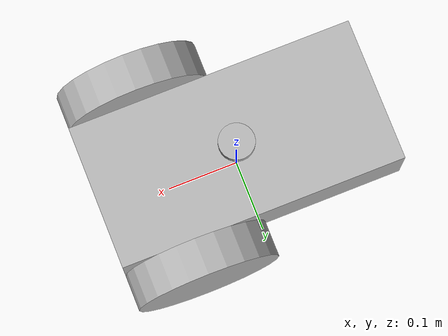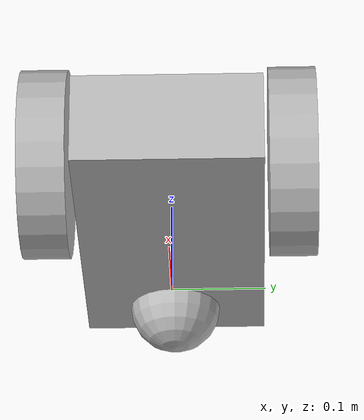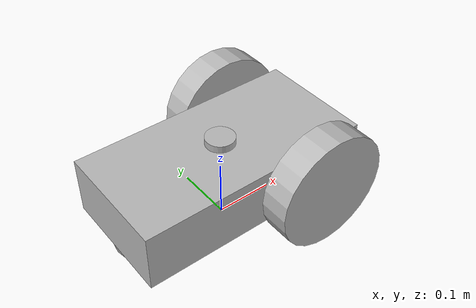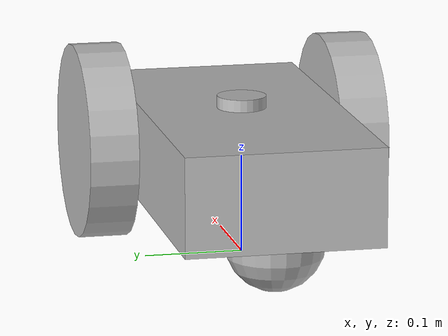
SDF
<?xml version="1.0"?>
<sdf version='1.4'>
    <model name="my_robot">
        <static>false</static>
        <pose>0.0 0.0 0.0 0.0 0.0 0.0</pose>
        <link name="base_footprint"/>

        <link name='base_link'>
            <pose>0 0 .1 0 0 0</pose>
            <collision name='collision_chassis'>
                <geometry>
                    <box>
                        <size>.4 .2 .1</size>
                    </box>
                </geometry>
                <surface>
                    <mass>10</mass>
                </surface>
            </collision>

            <visual name='visual_chassis'>
                <geometry>
                    <box>
                        <size>.4 .2 .1</size>
                    </box>
                </geometry>
            </visual>

            <collision name='caster_collision'>
            <pose>-0.15 0 -0.05 0 0 0</pose>
            <geometry>
                <sphere>
                    <radius>.05</radius>
                </sphere>
            </geometry>
            <surface>
                <mass>10</mass>
            </surface>
            </collision>

            <visual name='caster_visual'>
                <pose>-0.15 0 -0.05 0 0 0</pose>
                <geometry>
                    <sphere>
                        <radius>.05</radius>
                    </sphere>
                </geometry>
            </visual>
        </link>

        <link name="laser_link">
            <pose>0 0 .15 0 0 0</pose>

            <!-- Add a mesh to make it more visually appealing -->
            <visual name="visual-laser">
              <geometry>
                <cylinder>
                    <radius>.025</radius>
                    <length>.025</length>
                </cylinder>
              </geometry>
            </visual>

            <!-- Collision properties of the base of the laser range finder-->
            <collision name="collision-laser">
              <geometry>
                <cylinder>
                    <radius>.025</radius>
                    <length>.025</length>
                </cylinder>
              </geometry>
            </collision>

            <sensor name="laser" type="ray">
                <pose>0 0 .15 0 0 0</pose>
                <ray>
                    <scan>
                    <horizontal>
                        <samples>360</samples>
                        <resolution>1</resolution>
                        <min_angle>-3.14</min_angle>
                        <max_angle>3.14</max_angle>
                    </horizontal>
                    </scan>
                    <range>
                    <min>0.08</min>
                    <max>10</max>
                    <resolution>0.05</resolution>
                    </range>
                </ray>
                <always_on>1</always_on>
                <update_rate>10</update_rate>
                <visualize>true</visualize>

                <plugin name='laser' filename='libgazebo_ros_ray_sensor.so'>
                    <ros>
                        <remapping>~/out:=/scan</remapping>
                    </ros>
                    <output_type>sensor_msgs/LaserScan</output_type>
                    <frame_name>laser_link</frame_name>
                    <robot_base_frame>base_link</robot_base_frame>
                </plugin>
            </sensor>
        </link>

        <link name="left_wheel">
            <pose>0.1 0.13 0.1 0 1.5707 1.5707</pose>
            <collision name="collision_left">
                <geometry>
                    <cylinder>
                        <radius>.1</radius>
                        <length>.05</length>
                    </cylinder>
                </geometry>
                <surface>
                    <friction>
                        <ode>
                            <mu>1</mu>
                            <mu2>1</mu2>
                            <slip1>0</slip1>
                            <slip2>0</slip2>
                        </ode>
                    </friction>
                </surface>
            </collision>
            <visual name="visual_left">
                <geometry>
                    <cylinder>
                        <radius>.1</radius>
                        <length>.05</length>
                    </cylinder>
                </geometry>
            </visual>
        </link>

        <link name="right_wheel">
            <pose>0.1 -0.13 0.1 0 1.5707 1.5707</pose>
            <collision name="collision_right">
                <geometry>
                    <cylinder>
                        <radius>.1</radius>
                        <length>.05</length>
                    </cylinder>
                </geometry>
                <surface>
                    <friction>
                        <ode>
                            <mu>1</mu>
                            <mu2>1</mu2>
                            <slip1>0</slip1>
                            <slip2>0</slip2>
                        </ode>
                    </friction>
                </surface>
            </collision>
            <visual name="visual_right">
                <geometry>
                    <cylinder>
                        <radius>.1</radius>
                        <length>.05</length>
                    </cylinder>
                </geometry>
            </visual>
        </link>

        <joint type="revolute" name="left_wheel_hinge">
            <pose>0 0 -0.03 0 0 0</pose>
            <child>left_wheel</child>
            <parent>base_link</parent>
            <axis>
                <xyz>0 1 0</xyz>
            </axis>
        </joint>

        <joint type="revolute" name="right_wheel_hinge">
            <pose>0 0 0.03 0 0 0</pose>
            <child>right_wheel</child>
            <parent>base_link</parent>
            <axis>
                <xyz>0 1 0</xyz>
            </axis>
        </joint>

        <joint type="fixed" name="laser_joint">
            <child>laser_link</child>
            <parent>base_link</parent>
            <pose>0 0 0 0 0 0</pose>
        </joint>

        <joint name="base_joint" type="fixed">
            <child>base_footprint</child>
            <parent>base_link</parent>
            <pose>0 0 0 0 0 0</pose>
        </joint>

        <!-- Controls the differential drive robot -->
       <plugin name='diff_drive' filename='libgazebo_ros_diff_drive.so'>
        <ros>
          <remapping>cmd_vel:=cmd_vel</remapping>
          <remapping>odom:=odom</remapping>
        </ros>

        <!-- wheels -->
        <left_joint>left_wheel_hinge</left_joint>
        <right_joint>right_wheel_hinge</right_joint>

        <!-- kinematics -->
        <wheel_separation>0.26</wheel_separation>
        <wheel_diameter>0.2</wheel_diameter>

        <!-- limits -->
        <max_wheel_torque>3</max_wheel_torque>
        <max_wheel_acceleration>0.2</max_wheel_acceleration>

        <!-- output -->
        <publish_odom>true</publish_odom>
        <publish_odom_tf>true</publish_odom_tf>
        <publish_wheel_tf>true</publish_wheel_tf>

        <odometry_frame>odom</odometry_frame>
        <robot_base_frame>base_link</robot_base_frame>
      </plugin>

      <plugin name="basic_mobile_bot_joint_state" filename="libgazebo_ros_joint_state_publisher.so">
        <ros>
          <remapping>~/out:=joint_states</remapping>
        </ros>
        <update_rate>30</update_rate>
        <joint_name>left_wheel_hinge</joint_name>
        <joint_name>right_wheel_hinge</joint_name>
      </plugin>

    </model>
</sdf>
